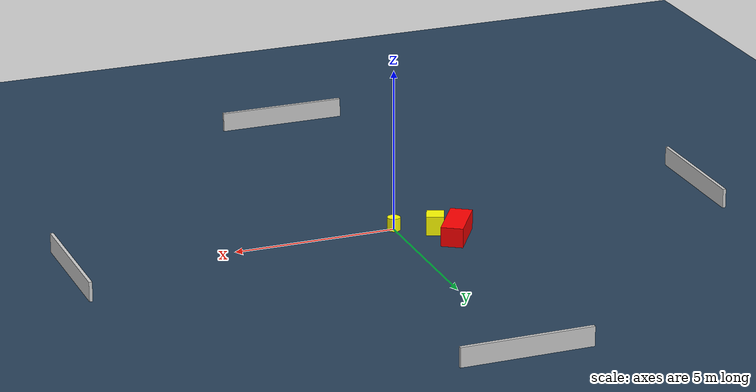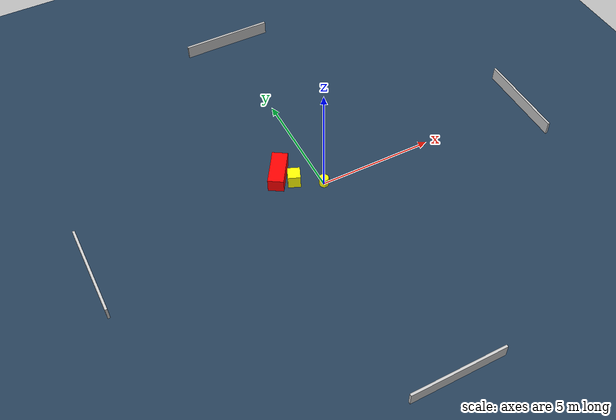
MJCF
<?xml version="1.0" ?>
<mujoco model="generated_environment">
  <option timestep="0.01" integrator="RK4" cone="elliptic"/>
  <default>
    <geom density="1"/>
  </default>
  <asset>
    <texture builtin="gradient" height="3072" name="skybox" rgb1="0.3 0.5 0.7" rgb2="0 0 0" type="skybox" width="512"/>
    <texture builtin="checker" height="300" name="groundplane" rgb1="0.2 0.3 0.4" rgb2="0.1 0.2 0.3" type="2d" width="300"/>
    <material name="groundplane" reflectance="0.2" texrepeat="5 5" texture="groundplane"/>
  </asset>
  <worldbody>
    <light dir="0 0 -1" directional="true" pos="0 0 1.5"/>
    <geom condim="3" friction="0.5 0.005 0.001" material="groundplane" name="floor" pos="0 0 0" size="0 0 0.05" type="plane"/>
    <body name="walls">
      <geom name="wall_1" condim="4" pos="-10.0 0.0 0.3" rgba="0.800000011920929 0.800000011920929 0.800000011920929 1.0" size="0.05 2.0 0.3" type="box"/>
      <geom name="wall_2" condim="4" pos="10.0 0.0 0.3" rgba="0.800000011920929 0.800000011920929 0.800000011920929 1.0" size="0.05 2.0 0.3" type="box"/>
      <geom name="wall_3" condim="4" pos="0.0 -10.0 0.3" rgba="0.800000011920929 0.800000011920929 0.800000011920929 1.0" size="2.0 0.05 0.3" type="box"/>
      <geom name="wall_4" condim="4" pos="0.0 10.0 0.3" rgba="0.800000011920929 0.800000011920929 0.800000011920929 1.0" size="2.0 0.05 0.3" type="box"/>
    </body>
    <body name="robot">
      <joint name="joint_x" type="slide" pos="0 0 0" axis="1 0 0"/>
      <joint name="joint_y" type="slide" pos="0 0 0" axis="0 1 0"/>
      <geom name="robot" type="cylinder" pos="0.0 0.0 0.2" size="0.2 0.2 0.0" mass="5.0" friction="1.0 0.005 0.0001" condim="4" rgba="1.0 1.0 0.0 1.0"/>
    </body>
    <body name="obstacle_1_movable">
      <geom name="obstacle_1_movable" condim="4" pos="-1.065721616348361 0.6633135198754864 0.3" euler="0 0 337.2702768608634" friction="0.0 0.005 0.001" rgba="1.0 1.0 0.0 1.0" size="0.26633477767217145 0.2815942942154355 0.3" type="box" mass="0.1"/>
      <joint type="free"/>
    </body>
    <body name="obstacle_2_static">
      <geom name="obstacle_2_static" condim="4" pos="-1.509633962168767 1.2622985583158397 0.3" euler="0 0 237.37708905634963" friction="0.0 0.005 0.001" rgba="1.0 0.0 0.0 1.0" size="0.7967029025877932 0.33570476231873914 0.3" type="box"/>
    </body>
  </worldbody>
  <actuator>
    <motor name="actuator_x" joint="joint_x" gear="1" ctrlrange="-1 1"/>
    <motor name="actuator_y" joint="joint_y" gear="1" ctrlrange="-1 1"/>
  </actuator>
</mujoco>
